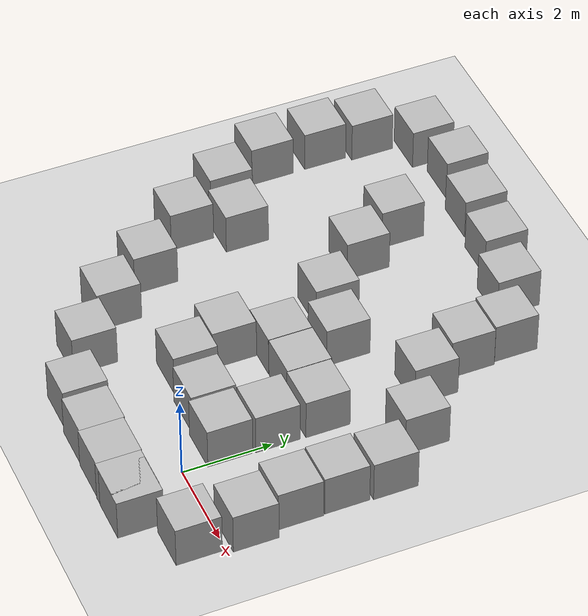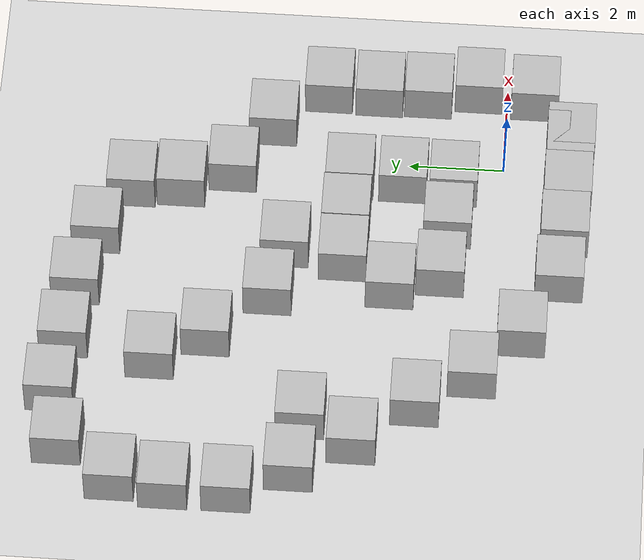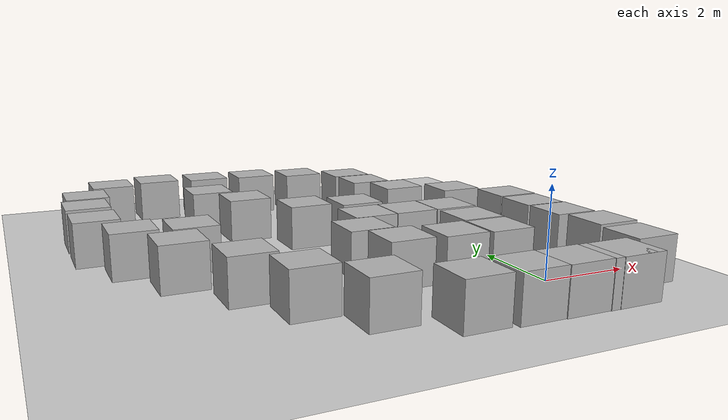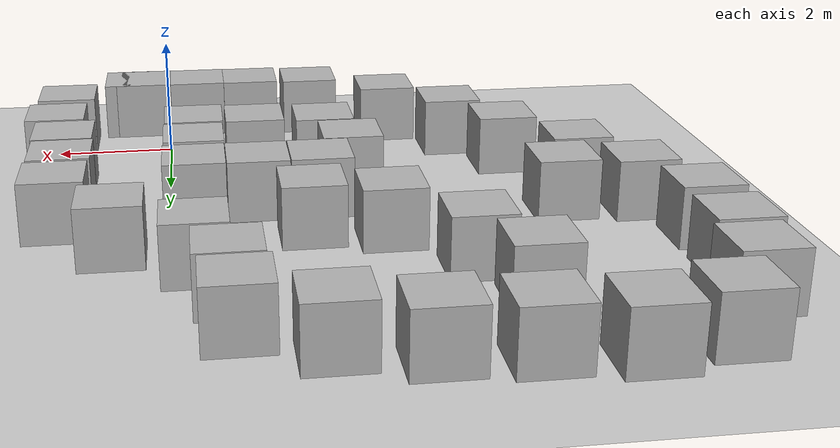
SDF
<sdf version='1.9'>
  <world name='empty'>
    <physics name='1ms' type='ignored'>
      <max_step_size>0.001</max_step_size>
      <real_time_factor>1</real_time_factor>
      <real_time_update_rate>1000</real_time_update_rate>
    </physics>
    <plugin name='ignition::gazebo::systems::Physics' filename='ignition-gazebo-physics-system'/>
    <plugin name='ignition::gazebo::systems::UserCommands' filename='ignition-gazebo-user-commands-system'/>
    <plugin name='ignition::gazebo::systems::SceneBroadcaster' filename='ignition-gazebo-scene-broadcaster-system'/>
    <plugin name='ignition::gazebo::systems::Contact' filename='ignition-gazebo-contact-system'/>
    <gravity>0 0 -9.8</gravity>
    <magnetic_field>6e-06 2.3e-05 -4.2e-05</magnetic_field>
    <atmosphere type='adiabatic'/>
    <scene>
      <ambient>0.4 0.4 0.4 1</ambient>
      <background>0.7 0.7 0.7 1</background>
      <shadows>true</shadows>
    </scene>
    <model name='ground_plane'>
      <static>true</static>
      <link name='link'>
        <collision name='collision'>
          <geometry>
            <plane>
              <normal>0 0 1</normal>
              <size>100 100</size>
            </plane>
          </geometry>
          <surface>
            <friction>
              <ode/>
            </friction>
            <bounce/>
            <contact/>
          </surface>
        </collision>
        <visual name='visual'>
          <geometry>
            <plane>
              <normal>0 0 1</normal>
              <size>100 100</size>
            </plane>
          </geometry>
          <material>
            <ambient>0.8 0.8 0.8 1</ambient>
            <diffuse>0.8 0.8 0.8 1</diffuse>
            <specular>0.8 0.8 0.8 1</specular>
          </material>
        </visual>
        <pose>0 0 0 0 -0 0</pose>
        <inertial>
          <pose>0 0 0 0 -0 0</pose>
          <mass>1</mass>
          <inertia>
            <ixx>1</ixx>
            <ixy>0</ixy>
            <ixz>0</ixz>
            <iyy>1</iyy>
            <iyz>0</iyz>
            <izz>1</izz>
          </inertia>
        </inertial>
        <enable_wind>false</enable_wind>
      </link>
      <pose>0 0 0 0 -0 0</pose>
      <self_collide>false</self_collide>
    </model>
    <model name='box'>
      <pose>-0.52554 -1.35313 0.5 -0 -0 -1e-06</pose>
      <link name='box_link'>
        <inertial>
          <inertia>
            <ixx>0.16666</ixx>
            <ixy>0</ixy>
            <ixz>0</ixz>
            <iyy>0.16666</iyy>
            <iyz>0</iyz>
            <izz>0.16666</izz>
          </inertia>
          <mass>1</mass>
          <pose>0 0 0 0 -0 0</pose>
        </inertial>
        <collision name='box_collision'>
          <geometry>
            <box>
              <size>1 1 1</size>
            </box>
          </geometry>
          <surface>
            <friction>
              <ode/>
            </friction>
            <bounce/>
            <contact/>
          </surface>
        </collision>
        <visual name='box_visual'>
          <geometry>
            <box>
              <size>1 1 1</size>
            </box>
          </geometry>
          <material>
            <ambient>0.3 0.3 0.3 1</ambient>
            <diffuse>0.7 0.7 0.7 1</diffuse>
            <specular>1 1 1 1</specular>
          </material>
        </visual>
        <pose>0 0 0 0 -0 0</pose>
        <enable_wind>false</enable_wind>
      </link>
      <static>false</static>
      <self_collide>false</self_collide>
    </model>
    <model name='box_0'>
      <pose>0.683707 -1.37469 0.5 0 0 -0</pose>
      <link name='box_link'>
        <inertial>
          <inertia>
            <ixx>0.16666</ixx>
            <ixy>0</ixy>
            <ixz>0</ixz>
            <iyy>0.16666</iyy>
            <iyz>0</iyz>
            <izz>0.16666</izz>
          </inertia>
          <mass>1</mass>
          <pose>0 0 0 0 -0 0</pose>
        </inertial>
        <collision name='box_collision'>
          <geometry>
            <box>
              <size>1 1 1</size>
            </box>
          </geometry>
          <surface>
            <friction>
              <ode/>
            </friction>
            <bounce/>
            <contact/>
          </surface>
        </collision>
        <visual name='box_visual'>
          <geometry>
            <box>
              <size>1 1 1</size>
            </box>
          </geometry>
          <material>
            <ambient>0.3 0.3 0.3 1</ambient>
            <diffuse>0.7 0.7 0.7 1</diffuse>
            <specular>1 1 1 1</specular>
          </material>
        </visual>
        <pose>0 0 0 0 -0 0</pose>
        <enable_wind>false</enable_wind>
      </link>
      <static>false</static>
      <self_collide>false</self_collide>
    </model>
    <model name='box_1'>
      <pose>0.47446 -1.36736 0.5 0 0 -0</pose>
      <link name='box_link'>
        <inertial>
          <inertia>
            <ixx>0.16666</ixx>
            <ixy>0</ixy>
            <ixz>0</ixz>
            <iyy>0.16666</iyy>
            <iyz>0</iyz>
            <izz>0.16666</izz>
          </inertia>
          <mass>1</mass>
          <pose>0 0 0 0 -0 0</pose>
        </inertial>
        <collision name='box_collision'>
          <geometry>
            <box>
              <size>1 1 1</size>
            </box>
          </geometry>
          <surface>
            <friction>
              <ode/>
            </friction>
            <bounce/>
            <contact/>
          </surface>
        </collision>
        <visual name='box_visual'>
          <geometry>
            <box>
              <size>1 1 1</size>
            </box>
          </geometry>
          <material>
            <ambient>0.3 0.3 0.3 1</ambient>
            <diffuse>0.7 0.7 0.7 1</diffuse>
            <specular>1 1 1 1</specular>
          </material>
        </visual>
        <pose>0 0 0 0 -0 0</pose>
        <enable_wind>false</enable_wind>
      </link>
      <static>false</static>
      <self_collide>false</self_collide>
    </model>
    <model name='box_1_1'>
      <pose>-1.52554 -1.33054 0.5 -0 -0 -1e-06</pose>
      <link name='box_link'>
        <inertial>
          <inertia>
            <ixx>0.16666</ixx>
            <ixy>0</ixy>
            <ixz>0</ixz>
            <iyy>0.16666</iyy>
            <iyz>0</iyz>
            <izz>0.16666</izz>
          </inertia>
          <mass>1</mass>
        </inertial>
        <collision name='box_collision'>
          <geometry>
            <box>
              <size>1 1 1</size>
            </box>
          </geometry>
          <surface>
            <friction>
              <ode/>
            </friction>
            <bounce/>
            <contact/>
          </surface>
        </collision>
        <visual name='box_visual'>
          <geometry>
            <box>
              <size>1 1 1</size>
            </box>
          </geometry>
          <material>
            <ambient>0.3 0.3 0.3 1</ambient>
            <diffuse>0.7 0.7 0.7 1</diffuse>
            <specular>1 1 1 1</specular>
          </material>
        </visual>
      </link>
      <static>false</static>
      <self_collide>false</self_collide>
    </model>
    <model name='box_1_2'>
      <pose>1.83501 -0.574282 0.5 0 -0 -0</pose>
      <link name='box_link'>
        <inertial>
          <inertia>
            <ixx>0.16666</ixx>
            <ixy>0</ixy>
            <ixz>0</ixz>
            <iyy>0.16666</iyy>
            <iyz>0</iyz>
            <izz>0.16666</izz>
          </inertia>
          <mass>1</mass>
        </inertial>
        <collision name='box_collision'>
          <geometry>
            <box>
              <size>1 1 1</size>
            </box>
          </geometry>
          <surface>
            <friction>
              <ode/>
            </friction>
            <bounce/>
            <contact/>
          </surface>
        </collision>
        <visual name='box_visual'>
          <geometry>
            <box>
              <size>1 1 1</size>
            </box>
          </geometry>
          <material>
            <ambient>0.3 0.3 0.3 1</ambient>
            <diffuse>0.7 0.7 0.7 1</diffuse>
            <specular>1 1 1 1</specular>
          </material>
        </visual>
      </link>
      <static>false</static>
      <self_collide>false</self_collide>
    </model>
    <model name='box_1_3'>
      <pose>1.95257 0.613796 0.5 0 -0 -0</pose>
      <link name='box_link'>
        <inertial>
          <inertia>
            <ixx>0.16666</ixx>
            <ixy>0</ixy>
            <ixz>0</ixz>
            <iyy>0.16666</iyy>
            <iyz>0</iyz>
            <izz>0.16666</izz>
          </inertia>
          <mass>1</mass>
        </inertial>
        <collision name='box_collision'>
          <geometry>
            <box>
              <size>1 1 1</size>
            </box>
          </geometry>
          <surface>
            <friction>
              <ode/>
            </friction>
            <bounce/>
            <contact/>
          </surface>
        </collision>
        <visual name='box_visual'>
          <geometry>
            <box>
              <size>1 1 1</size>
            </box>
          </geometry>
          <material>
            <ambient>0.3 0.3 0.3 1</ambient>
            <diffuse>0.7 0.7 0.7 1</diffuse>
            <specular>1 1 1 1</specular>
          </material>
        </visual>
      </link>
      <static>false</static>
      <self_collide>false</self_collide>
    </model>
    <model name='box_1_4'>
      <pose>-1.47774 1.10873 0.5 0 -0 -0</pose>
      <link name='box_link'>
        <inertial>
          <inertia>
            <ixx>0.16666</ixx>
            <ixy>0</ixy>
            <ixz>0</ixz>
            <iyy>0.16666</iyy>
            <iyz>0</iyz>
            <izz>0.16666</izz>
          </inertia>
          <mass>1</mass>
        </inertial>
        <collision name='box_collision'>
          <geometry>
            <box>
              <size>1 1 1</size>
            </box>
          </geometry>
          <surface>
            <friction>
              <ode/>
            </friction>
            <bounce/>
            <contact/>
          </surface>
        </collision>
        <visual name='box_visual'>
          <geometry>
            <box>
              <size>1 1 1</size>
            </box>
          </geometry>
          <material>
            <ambient>0.3 0.3 0.3 1</ambient>
            <diffuse>0.7 0.7 0.7 1</diffuse>
            <specular>1 1 1 1</specular>
          </material>
        </visual>
      </link>
      <static>false</static>
      <self_collide>false</self_collide>
    </model>
    <model name='box_1_5'>
      <pose>-0.428855 1.03773 0.5 0 -0 -0</pose>
      <link name='box_link'>
        <inertial>
          <inertia>
            <ixx>0.16666</ixx>
            <ixy>0</ixy>
            <ixz>0</ixz>
            <iyy>0.16666</iyy>
            <iyz>0</iyz>
            <izz>0.16666</izz>
          </inertia>
          <mass>1</mass>
        </inertial>
        <collision name='box_collision'>
          <geometry>
            <box>
              <size>1 1 1</size>
            </box>
          </geometry>
          <surface>
            <friction>
              <ode/>
            </friction>
            <bounce/>
            <contact/>
          </surface>
        </collision>
        <visual name='box_visual'>
          <geometry>
            <box>
              <size>1 1 1</size>
            </box>
          </geometry>
          <material>
            <ambient>0.3 0.3 0.3 1</ambient>
            <diffuse>0.7 0.7 0.7 1</diffuse>
            <specular>1 1 1 1</specular>
          </material>
        </visual>
      </link>
      <static>false</static>
      <self_collide>false</self_collide>
    </model>
    <model name='box_1_6'>
      <pose>-0.412319 2.09972 0.5 0 -0 -0</pose>
      <link name='box_link'>
        <inertial>
          <inertia>
            <ixx>0.16666</ixx>
            <ixy>0</ixy>
            <ixz>0</ixz>
            <iyy>0.16666</iyy>
            <iyz>0</iyz>
            <izz>0.16666</izz>
          </inertia>
          <mass>1</mass>
        </inertial>
        <collision name='box_collision'>
          <geometry>
            <box>
              <size>1 1 1</size>
            </box>
          </geometry>
          <surface>
            <friction>
              <ode/>
            </friction>
            <bounce/>
            <contact/>
          </surface>
        </collision>
        <visual name='box_visual'>
          <geometry>
            <box>
              <size>1 1 1</size>
            </box>
          </geometry>
          <material>
            <ambient>0.3 0.3 0.3 1</ambient>
            <diffuse>0.7 0.7 0.7 1</diffuse>
            <specular>1 1 1 1</specular>
          </material>
        </visual>
      </link>
      <static>false</static>
      <self_collide>false</self_collide>
    </model>
    <model name='box_1_7'>
      <pose>1.75478 1.67727 0.5 0 -0 -0</pose>
      <link name='box_link'>
        <inertial>
          <inertia>
            <ixx>0.16666</ixx>
            <ixy>0</ixy>
            <ixz>0</ixz>
            <iyy>0.16666</iyy>
            <iyz>0</iyz>
            <izz>0.16666</izz>
          </inertia>
          <mass>1</mass>
        </inertial>
        <collision name='box_collision'>
          <geometry>
            <box>
              <size>1 1 1</size>
            </box>
          </geometry>
          <surface>
            <friction>
              <ode/>
            </friction>
            <bounce/>
            <contact/>
          </surface>
        </collision>
        <visual name='box_visual'>
          <geometry>
            <box>
              <size>1 1 1</size>
            </box>
          </geometry>
          <material>
            <ambient>0.3 0.3 0.3 1</ambient>
            <diffuse>0.7 0.7 0.7 1</diffuse>
            <specular>1 1 1 1</specular>
          </material>
        </visual>
      </link>
      <static>false</static>
      <self_collide>false</self_collide>
    </model>
    <model name='box_1_8'>
      <pose>1.72751 2.71147 0.5 0 -0 -0</pose>
      <link name='box_link'>
        <inertial>
          <inertia>
            <ixx>0.16666</ixx>
            <ixy>0</ixy>
            <ixz>0</ixz>
            <iyy>0.16666</iyy>
            <iyz>0</iyz>
            <izz>0.16666</izz>
          </inertia>
          <mass>1</mass>
        </inertial>
        <collision name='box_collision'>
          <geometry>
            <box>
              <size>1 1 1</size>
            </box>
          </geometry>
          <surface>
            <friction>
              <ode/>
            </friction>
            <bounce/>
            <contact/>
          </surface>
        </collision>
        <visual name='box_visual'>
          <geometry>
            <box>
              <size>1 1 1</size>
            </box>
          </geometry>
          <material>
            <ambient>0.3 0.3 0.3 1</ambient>
            <diffuse>0.7 0.7 0.7 1</diffuse>
            <specular>1 1 1 1</specular>
          </material>
        </visual>
      </link>
      <static>false</static>
      <self_collide>false</self_collide>
    </model>
    <model name='box_1_9'>
      <pose>1.75526 3.78392 0.5 0 -0 -0</pose>
      <link name='box_link'>
        <inertial>
          <inertia>
            <ixx>0.16666</ixx>
            <ixy>0</ixy>
            <ixz>0</ixz>
            <iyy>0.16666</iyy>
            <iyz>0</iyz>
            <izz>0.16666</izz>
          </inertia>
          <mass>1</mass>
        </inertial>
        <collision name='box_collision'>
          <geometry>
            <box>
              <size>1 1 1</size>
            </box>
          </geometry>
          <surface>
            <friction>
              <ode/>
            </friction>
            <bounce/>
            <contact/>
          </surface>
        </collision>
        <visual name='box_visual'>
          <geometry>
            <box>
              <size>1 1 1</size>
            </box>
          </geometry>
          <material>
            <ambient>0.3 0.3 0.3 1</ambient>
            <diffuse>0.7 0.7 0.7 1</diffuse>
            <specular>1 1 1 1</specular>
          </material>
        </visual>
      </link>
      <static>false</static>
      <self_collide>false</self_collide>
    </model>
    <model name='box_1_10'>
      <pose>-2.64793 -1.26761 0.5 0 -0 -0</pose>
      <link name='box_link'>
        <inertial>
          <inertia>
            <ixx>0.16666</ixx>
            <ixy>0</ixy>
            <ixz>0</ixz>
            <iyy>0.16666</iyy>
            <iyz>0</iyz>
            <izz>0.16666</izz>
          </inertia>
          <mass>1</mass>
        </inertial>
        <collision name='box_collision'>
          <geometry>
            <box>
              <size>1 1 1</size>
            </box>
          </geometry>
          <surface>
            <friction>
              <ode/>
            </friction>
            <bounce/>
            <contact/>
          </surface>
        </collision>
        <visual name='box_visual'>
          <geometry>
            <box>
              <size>1 1 1</size>
            </box>
          </geometry>
          <material>
            <ambient>0.3 0.3 0.3 1</ambient>
            <diffuse>0.7 0.7 0.7 1</diffuse>
            <specular>1 1 1 1</specular>
          </material>
        </visual>
      </link>
      <static>false</static>
      <self_collide>false</self_collide>
    </model>
    <model name='box_1_11'>
      <pose>-2.6795 1.1977 0.5 0 -0 -0</pose>
      <link name='box_link'>
        <inertial>
          <inertia>
            <ixx>0.16666</ixx>
            <ixy>0</ixy>
            <ixz>0</ixz>
            <iyy>0.16666</iyy>
            <iyz>0</iyz>
            <izz>0.16666</izz>
          </inertia>
          <mass>1</mass>
        </inertial>
        <collision name='box_collision'>
          <geometry>
            <box>
              <size>1 1 1</size>
            </box>
          </geometry>
          <surface>
            <friction>
              <ode/>
            </friction>
            <bounce/>
            <contact/>
          </surface>
        </collision>
        <visual name='box_visual'>
          <geometry>
            <box>
              <size>1 1 1</size>
            </box>
          </geometry>
          <material>
            <ambient>0.3 0.3 0.3 1</ambient>
            <diffuse>0.7 0.7 0.7 1</diffuse>
            <specular>1 1 1 1</specular>
          </material>
        </visual>
      </link>
      <static>false</static>
      <self_collide>false</self_collide>
    </model>
    <model name='box_2'>
      <pose>-0.401001 3.21963 0.5 0 -0 -0</pose>
      <link name='box_link'>
        <inertial>
          <inertia>
            <ixx>0.16666</ixx>
            <ixy>0</ixy>
            <ixz>0</ixz>
            <iyy>0.16666</iyy>
            <iyz>0</iyz>
            <izz>0.16666</izz>
          </inertia>
          <mass>1</mass>
          <pose>0 0 0 0 -0 0</pose>
        </inertial>
        <collision name='box_collision'>
          <geometry>
            <box>
              <size>1 1 1</size>
            </box>
          </geometry>
          <surface>
            <friction>
              <ode/>
            </friction>
            <bounce/>
            <contact/>
          </surface>
        </collision>
        <visual name='box_visual'>
          <geometry>
            <box>
              <size>1 1 1</size>
            </box>
          </geometry>
          <material>
            <ambient>0.3 0.3 0.3 1</ambient>
            <diffuse>0.7 0.7 0.7 1</diffuse>
            <specular>1 1 1 1</specular>
          </material>
        </visual>
        <pose>0 0 0 0 -0 0</pose>
        <enable_wind>false</enable_wind>
      </link>
      <static>false</static>
      <self_collide>false</self_collide>
    </model>
    <model name='box_1_12'>
      <pose>-1.41265 3.24077 0.5 0 -0 -0</pose>
      <link name='box_link'>
        <inertial>
          <inertia>
            <ixx>0.16666</ixx>
            <ixy>0</ixy>
            <ixz>0</ixz>
            <iyy>0.16666</iyy>
            <iyz>0</iyz>
            <izz>0.16666</izz>
          </inertia>
          <mass>1</mass>
        </inertial>
        <collision name='box_collision'>
          <geometry>
            <box>
              <size>1 1 1</size>
            </box>
          </geometry>
          <surface>
            <friction>
              <ode/>
            </friction>
            <bounce/>
            <contact/>
          </surface>
        </collision>
        <visual name='box_visual'>
          <geometry>
            <box>
              <size>1 1 1</size>
            </box>
          </geometry>
          <material>
            <ambient>0.3 0.3 0.3 1</ambient>
            <diffuse>0.7 0.7 0.7 1</diffuse>
            <specular>1 1 1 1</specular>
          </material>
        </visual>
      </link>
      <static>false</static>
      <self_collide>false</self_collide>
    </model>
    <model name='box_1_13'>
      <pose>-2.42609 3.23956 0.5 0 -0 -0</pose>
      <link name='box_link'>
        <inertial>
          <inertia>
            <ixx>0.16666</ixx>
            <ixy>0</ixy>
            <ixz>0</ixz>
            <iyy>0.16666</iyy>
            <iyz>0</iyz>
            <izz>0.16666</izz>
          </inertia>
          <mass>1</mass>
        </inertial>
        <collision name='box_collision'>
          <geometry>
            <box>
              <size>1 1 1</size>
            </box>
          </geometry>
          <surface>
            <friction>
              <ode/>
            </friction>
            <bounce/>
            <contact/>
          </surface>
        </collision>
        <visual name='box_visual'>
          <geometry>
            <box>
              <size>1 1 1</size>
            </box>
          </geometry>
          <material>
            <ambient>0.3 0.3 0.3 1</ambient>
            <diffuse>0.7 0.7 0.7 1</diffuse>
            <specular>1 1 1 1</specular>
          </material>
        </visual>
      </link>
      <static>false</static>
      <self_collide>false</self_collide>
    </model>
    <model name='box_1_14'>
      <pose>-3.0428 2.22465 0.5 0 -0 -0</pose>
      <link name='box_link'>
        <inertial>
          <inertia>
            <ixx>0.16666</ixx>
            <ixy>0</ixy>
            <ixz>0</ixz>
            <iyy>0.16666</iyy>
            <iyz>0</iyz>
            <izz>0.16666</izz>
          </inertia>
          <mass>1</mass>
        </inertial>
        <collision name='box_collision'>
          <geometry>
            <box>
              <size>1 1 1</size>
            </box>
          </geometry>
          <surface>
            <friction>
              <ode/>
            </friction>
            <bounce/>
            <contact/>
          </surface>
        </collision>
        <visual name='box_visual'>
          <geometry>
            <box>
              <size>1 1 1</size>
            </box>
          </geometry>
          <material>
            <ambient>0.3 0.3 0.3 1</ambient>
            <diffuse>0.7 0.7 0.7 1</diffuse>
            <specular>1 1 1 1</specular>
          </material>
        </visual>
      </link>
      <static>false</static>
      <self_collide>false</self_collide>
    </model>
    <model name='box_1_15'>
      <pose>0.8495 4.90903 0.5 0 -0 -0</pose>
      <link name='box_link'>
        <inertial>
          <inertia>
            <ixx>0.16666</ixx>
            <ixy>0</ixy>
            <ixz>0</ixz>
            <iyy>0.16666</iyy>
            <iyz>0</iyz>
            <izz>0.16666</izz>
          </inertia>
          <mass>1</mass>
        </inertial>
        <collision name='box_collision'>
          <geometry>
            <box>
              <size>1 1 1</size>
            </box>
          </geometry>
          <surface>
            <friction>
              <ode/>
            </friction>
            <bounce/>
            <contact/>
          </surface>
        </collision>
        <visual name='box_visual'>
          <geometry>
            <box>
              <size>1 1 1</size>
            </box>
          </geometry>
          <material>
            <ambient>0.3 0.3 0.3 1</ambient>
            <diffuse>0.7 0.7 0.7 1</diffuse>
            <specular>1 1 1 1</specular>
          </material>
        </visual>
      </link>
      <static>false</static>
      <self_collide>false</self_collide>
    </model>
    <model name='box_1_16'>
      <pose>-0.366812 5.67669 0.5 0 -0 -0</pose>
      <link name='box_link'>
        <inertial>
          <inertia>
            <ixx>0.16666</ixx>
            <ixy>0</ixy>
            <ixz>0</ixz>
            <iyy>0.16666</iyy>
            <iyz>0</iyz>
            <izz>0.16666</izz>
          </inertia>
          <mass>1</mass>
        </inertial>
        <collision name='box_collision'>
          <geometry>
            <box>
              <size>1 1 1</size>
            </box>
          </geometry>
          <surface>
            <friction>
              <ode/>
            </friction>
            <bounce/>
            <contact/>
          </surface>
        </collision>
        <visual name='box_visual'>
          <geometry>
            <box>
              <size>1 1 1</size>
            </box>
          </geometry>
          <material>
            <ambient>0.3 0.3 0.3 1</ambient>
            <diffuse>0.7 0.7 0.7 1</diffuse>
            <specular>1 1 1 1</specular>
          </material>
        </visual>
      </link>
      <static>false</static>
      <self_collide>false</self_collide>
    </model>
    <model name='box_1_17'>
      <pose>-0.805489 6.73086 0.5 0 -0 -0</pose>
      <link name='box_link'>
        <inertial>
          <inertia>
            <ixx>0.16666</ixx>
            <ixy>0</ixy>
            <ixz>0</ixz>
            <iyy>0.16666</iyy>
            <iyz>0</iyz>
            <izz>0.16666</izz>
          </inertia>
          <mass>1</mass>
        </inertial>
        <collision name='box_collision'>
          <geometry>
            <box>
              <size>1 1 1</size>
            </box>
          </geometry>
          <surface>
            <friction>
              <ode/>
            </friction>
            <bounce/>
            <contact/>
          </surface>
        </collision>
        <visual name='box_visual'>
          <geometry>
            <box>
              <size>1 1 1</size>
            </box>
          </geometry>
          <material>
            <ambient>0.3 0.3 0.3 1</ambient>
            <diffuse>0.7 0.7 0.7 1</diffuse>
            <specular>1 1 1 1</specular>
          </material>
        </visual>
      </link>
      <static>false</static>
      <self_collide>false</self_collide>
    </model>
    <model name='box_1_18'>
      <pose>-3.35503 4.73861 0.5 0 -0 -0</pose>
      <link name='box_link'>
        <inertial>
          <inertia>
            <ixx>0.16666</ixx>
            <ixy>0</ixy>
            <ixz>0</ixz>
            <iyy>0.16666</iyy>
            <iyz>0</iyz>
            <izz>0.16666</izz>
          </inertia>
          <mass>1</mass>
        </inertial>
        <collision name='box_collision'>
          <geometry>
            <box>
              <size>1 1 1</size>
            </box>
          </geometry>
          <surface>
            <friction>
              <ode/>
            </friction>
            <bounce/>
            <contact/>
          </surface>
        </collision>
        <visual name='box_visual'>
          <geometry>
            <box>
              <size>1 1 1</size>
            </box>
          </geometry>
          <material>
            <ambient>0.3 0.3 0.3 1</ambient>
            <diffuse>0.7 0.7 0.7 1</diffuse>
            <specular>1 1 1 1</specular>
          </material>
        </visual>
      </link>
      <static>false</static>
      <self_collide>false</self_collide>
    </model>
    <model name='box_1_19'>
      <pose>-4.43475 5.94034 0.5 0 -0 -0</pose>
      <link name='box_link'>
        <inertial>
          <inertia>
            <ixx>0.16666</ixx>
            <ixy>0</ixy>
            <ixz>0</ixz>
            <iyy>0.16666</iyy>
            <iyz>0</iyz>
            <izz>0.16666</izz>
          </inertia>
          <mass>1</mass>
        </inertial>
        <collision name='box_collision'>
          <geometry>
            <box>
              <size>1 1 1</size>
            </box>
          </geometry>
          <surface>
            <friction>
              <ode/>
            </friction>
            <bounce/>
            <contact/>
          </surface>
        </collision>
        <visual name='box_visual'>
          <geometry>
            <box>
              <size>1 1 1</size>
            </box>
          </geometry>
          <material>
            <ambient>0.3 0.3 0.3 1</ambient>
            <diffuse>0.7 0.7 0.7 1</diffuse>
            <specular>1 1 1 1</specular>
          </material>
        </visual>
      </link>
      <static>false</static>
      <self_collide>false</self_collide>
    </model>
    <model name='box_1_20'>
      <pose>-0.877019 7.77022 0.5 0 -0 -0</pose>
      <link name='box_link'>
        <inertial>
          <inertia>
            <ixx>0.16666</ixx>
            <ixy>0</ixy>
            <ixz>0</ixz>
            <iyy>0.16666</iyy>
            <iyz>0</iyz>
            <izz>0.16666</izz>
          </inertia>
          <mass>1</mass>
        </inertial>
        <collision name='box_collision'>
          <geometry>
            <box>
              <size>1 1 1</size>
            </box>
          </geometry>
          <surface>
            <friction>
              <ode/>
            </friction>
            <bounce/>
            <contact/>
          </surface>
        </collision>
        <visual name='box_visual'>
          <geometry>
            <box>
              <size>1 1 1</size>
            </box>
          </geometry>
          <material>
            <ambient>0.3 0.3 0.3 1</ambient>
            <diffuse>0.7 0.7 0.7 1</diffuse>
            <specular>1 1 1 1</specular>
          </material>
        </visual>
      </link>
      <static>false</static>
      <self_collide>false</self_collide>
    </model>
    <model name='box_1_21'>
      <pose>-3.362 8.72601 0.5 0 -0 -0</pose>
      <link name='box_link'>
        <inertial>
          <inertia>
            <ixx>0.16666</ixx>
            <ixy>0</ixy>
            <ixz>0</ixz>
            <iyy>0.16666</iyy>
            <iyz>0</iyz>
            <izz>0.16666</izz>
          </inertia>
          <mass>1</mass>
        </inertial>
        <collision name='box_collision'>
          <geometry>
            <box>
              <size>1 1 1</size>
            </box>
          </geometry>
          <surface>
            <friction>
              <ode/>
            </friction>
            <bounce/>
            <contact/>
          </surface>
        </collision>
        <visual name='box_visual'>
          <geometry>
            <box>
              <size>1 1 1</size>
            </box>
          </geometry>
          <material>
            <ambient>0.3 0.3 0.3 1</ambient>
            <diffuse>0.7 0.7 0.7 1</diffuse>
            <specular>1 1 1 1</specular>
          </material>
        </visual>
      </link>
      <static>false</static>
      <self_collide>false</self_collide>
    </model>
    <model name='box_1_22'>
      <pose>-4.65626 8.85518 0.5 0 -0 -0</pose>
      <link name='box_link'>
        <inertial>
          <inertia>
            <ixx>0.16666</ixx>
            <ixy>0</ixy>
            <ixz>0</ixz>
            <iyy>0.16666</iyy>
            <iyz>0</iyz>
            <izz>0.16666</izz>
          </inertia>
          <mass>1</mass>
        </inertial>
        <collision name='box_collision'>
          <geometry>
            <box>
              <size>1 1 1</size>
            </box>
          </geometry>
          <surface>
            <friction>
              <ode/>
            </friction>
            <bounce/>
            <contact/>
          </surface>
        </collision>
        <visual name='box_visual'>
          <geometry>
            <box>
              <size>1 1 1</size>
            </box>
          </geometry>
          <material>
            <ambient>0.3 0.3 0.3 1</ambient>
            <diffuse>0.7 0.7 0.7 1</diffuse>
            <specular>1 1 1 1</specular>
          </material>
        </visual>
      </link>
      <static>false</static>
      <self_collide>false</self_collide>
    </model>
    <model name='box_1_23'>
      <pose>-5.05286 7.04676 0.5 0 -0 -0</pose>
      <link name='box_link'>
        <inertial>
          <inertia>
            <ixx>0.16666</ixx>
            <ixy>0</ixy>
            <ixz>0</ixz>
            <iyy>0.16666</iyy>
            <iyz>0</iyz>
            <izz>0.16666</izz>
          </inertia>
          <mass>1</mass>
        </inertial>
        <collision name='box_collision'>
          <geometry>
            <box>
              <size>1 1 1</size>
            </box>
          </geometry>
          <surface>
            <friction>
              <ode/>
            </friction>
            <bounce/>
            <contact/>
          </surface>
        </collision>
        <visual name='box_visual'>
          <geometry>
            <box>
              <size>1 1 1</size>
            </box>
          </geometry>
          <material>
            <ambient>0.3 0.3 0.3 1</ambient>
            <diffuse>0.7 0.7 0.7 1</diffuse>
            <specular>1 1 1 1</specular>
          </material>
        </visual>
      </link>
      <static>false</static>
      <self_collide>false</self_collide>
    </model>
    <model name='box_1_24'>
      <pose>-5.96598 9.0242 0.5 0 -0 -0</pose>
      <link name='box_link'>
        <inertial>
          <inertia>
            <ixx>0.16666</ixx>
            <ixy>0</ixy>
            <ixz>0</ixz>
            <iyy>0.16666</iyy>
            <iyz>0</iyz>
            <izz>0.16666</izz>
          </inertia>
          <mass>1</mass>
        </inertial>
        <collision name='box_collision'>
          <geometry>
            <box>
              <size>1 1 1</size>
            </box>
          </geometry>
          <surface>
            <friction>
              <ode/>
            </friction>
            <bounce/>
            <contact/>
          </surface>
        </collision>
        <visual name='box_visual'>
          <geometry>
            <box>
              <size>1 1 1</size>
            </box>
          </geometry>
          <material>
            <ambient>0.3 0.3 0.3 1</ambient>
            <diffuse>0.7 0.7 0.7 1</diffuse>
            <specular>1 1 1 1</specular>
          </material>
        </visual>
      </link>
      <static>false</static>
      <self_collide>false</self_collide>
    </model>
    <model name='box_1_25'>
      <pose>-7.20051 8.76917 0.5 0 -0 -0</pose>
      <link name='box_link'>
        <inertial>
          <inertia>
            <ixx>0.16666</ixx>
            <ixy>0</ixy>
            <ixz>0</ixz>
            <iyy>0.16666</iyy>
            <iyz>0</iyz>
            <izz>0.16666</izz>
          </inertia>
          <mass>1</mass>
        </inertial>
        <collision name='box_collision'>
          <geometry>
            <box>
              <size>1 1 1</size>
            </box>
          </geometry>
          <surface>
            <friction>
              <ode/>
            </friction>
            <bounce/>
            <contact/>
          </surface>
        </collision>
        <visual name='box_visual'>
          <geometry>
            <box>
              <size>1 1 1</size>
            </box>
          </geometry>
          <material>
            <ambient>0.3 0.3 0.3 1</ambient>
            <diffuse>0.7 0.7 0.7 1</diffuse>
            <specular>1 1 1 1</specular>
          </material>
        </visual>
      </link>
      <static>false</static>
      <self_collide>false</self_collide>
    </model>
    <model name='box_1_26'>
      <pose>-7.96955 7.62229 0.5 -0 0 -0</pose>
      <link name='box_link'>
        <inertial>
          <inertia>
            <ixx>0.16666</ixx>
            <ixy>0</ixy>
            <ixz>0</ixz>
            <iyy>0.16666</iyy>
            <iyz>0</iyz>
            <izz>0.16666</izz>
          </inertia>
          <mass>1</mass>
        </inertial>
        <collision name='box_collision'>
          <geometry>
            <box>
              <size>1 1 1</size>
            </box>
          </geometry>
          <surface>
            <friction>
              <ode/>
            </friction>
            <bounce/>
            <contact/>
          </surface>
        </collision>
        <visual name='box_visual'>
          <geometry>
            <box>
              <size>1 1 1</size>
            </box>
          </geometry>
          <material>
            <ambient>0.3 0.3 0.3 1</ambient>
            <diffuse>0.7 0.7 0.7 1</diffuse>
            <specular>1 1 1 1</specular>
          </material>
        </visual>
      </link>
      <static>false</static>
      <self_collide>false</self_collide>
    </model>
    <model name='box_1_27'>
      <pose>-8.09582 6.52536 0.5 0 -0 -0</pose>
      <link name='box_link'>
        <inertial>
          <inertia>
            <ixx>0.16666</ixx>
            <ixy>0</ixy>
            <ixz>0</ixz>
            <iyy>0.16666</iyy>
            <iyz>0</iyz>
            <izz>0.16666</izz>
          </inertia>
          <mass>1</mass>
        </inertial>
        <collision name='box_collision'>
          <geometry>
            <box>
              <size>1 1 1</size>
            </box>
          </geometry>
          <surface>
            <friction>
              <ode/>
            </friction>
            <bounce/>
            <contact/>
          </surface>
        </collision>
        <visual name='box_visual'>
          <geometry>
            <box>
              <size>1 1 1</size>
            </box>
          </geometry>
          <material>
            <ambient>0.3 0.3 0.3 1</ambient>
            <diffuse>0.7 0.7 0.7 1</diffuse>
            <specular>1 1 1 1</specular>
          </material>
        </visual>
      </link>
      <static>false</static>
      <self_collide>false</self_collide>
    </model>
    <model name='box_1_28'>
      <pose>-8.08648 5.24145 0.5 0 -0 -0</pose>
      <link name='box_link'>
        <inertial>
          <inertia>
            <ixx>0.16666</ixx>
            <ixy>0</ixy>
            <ixz>0</ixz>
            <iyy>0.16666</iyy>
            <iyz>0</iyz>
            <izz>0.16666</izz>
          </inertia>
          <mass>1</mass>
        </inertial>
        <collision name='box_collision'>
          <geometry>
            <box>
              <size>1 1 1</size>
            </box>
          </geometry>
          <surface>
            <friction>
              <ode/>
            </friction>
            <bounce/>
            <contact/>
          </surface>
        </collision>
        <visual name='box_visual'>
          <geometry>
            <box>
              <size>1 1 1</size>
            </box>
          </geometry>
          <material>
            <ambient>0.3 0.3 0.3 1</ambient>
            <diffuse>0.7 0.7 0.7 1</diffuse>
            <specular>1 1 1 1</specular>
          </material>
        </visual>
      </link>
      <static>false</static>
      <self_collide>false</self_collide>
    </model>
    <model name='box_1_29'>
      <pose>-7.51817 4.01613 0.5 -0 0 -0</pose>
      <link name='box_link'>
        <inertial>
          <inertia>
            <ixx>0.16666</ixx>
            <ixy>0</ixy>
            <ixz>0</ixz>
            <iyy>0.16666</iyy>
            <iyz>0</iyz>
            <izz>0.16666</izz>
          </inertia>
          <mass>1</mass>
        </inertial>
        <collision name='box_collision'>
          <geometry>
            <box>
              <size>1 1 1</size>
            </box>
          </geometry>
          <surface>
            <friction>
              <ode/>
            </friction>
            <bounce/>
            <contact/>
          </surface>
        </collision>
        <visual name='box_visual'>
          <geometry>
            <box>
              <size>1 1 1</size>
            </box>
          </geometry>
          <material>
            <ambient>0.3 0.3 0.3 1</ambient>
            <diffuse>0.7 0.7 0.7 1</diffuse>
            <specular>1 1 1 1</specular>
          </material>
        </visual>
      </link>
      <static>false</static>
      <self_collide>false</self_collide>
    </model>
    <model name='box_1_30'>
      <pose>-6.80536 2.7896 0.5 0 -0 -0</pose>
      <link name='box_link'>
        <inertial>
          <inertia>
            <ixx>0.16666</ixx>
            <ixy>0</ixy>
            <ixz>0</ixz>
            <iyy>0.16666</iyy>
            <iyz>0</iyz>
            <izz>0.16666</izz>
          </inertia>
          <mass>1</mass>
        </inertial>
        <collision name='box_collision'>
          <geometry>
            <box>
              <size>1 1 1</size>
            </box>
          </geometry>
          <surface>
            <friction>
              <ode/>
            </friction>
            <bounce/>
            <contact/>
          </surface>
        </collision>
        <visual name='box_visual'>
          <geometry>
            <box>
              <size>1 1 1</size>
            </box>
          </geometry>
          <material>
            <ambient>0.3 0.3 0.3 1</ambient>
            <diffuse>0.7 0.7 0.7 1</diffuse>
            <specular>1 1 1 1</specular>
          </material>
        </visual>
      </link>
      <static>false</static>
      <self_collide>false</self_collide>
    </model>
    <model name='box_1_31'>
      <pose>-5.83028 1.55223 0.5 0 -0 -0</pose>
      <link name='box_link'>
        <inertial>
          <inertia>
            <ixx>0.16666</ixx>
            <ixy>0</ixy>
            <ixz>0</ixz>
            <iyy>0.16666</iyy>
            <iyz>0</iyz>
            <izz>0.16666</izz>
          </inertia>
          <mass>1</mass>
        </inertial>
        <collision name='box_collision'>
          <geometry>
            <box>
              <size>1 1 1</size>
            </box>
          </geometry>
          <surface>
            <friction>
              <ode/>
            </friction>
            <bounce/>
            <contact/>
          </surface>
        </collision>
        <visual name='box_visual'>
          <geometry>
            <box>
              <size>1 1 1</size>
            </box>
          </geometry>
          <material>
            <ambient>0.3 0.3 0.3 1</ambient>
            <diffuse>0.7 0.7 0.7 1</diffuse>
            <specular>1 1 1 1</specular>
          </material>
        </visual>
      </link>
      <static>false</static>
      <self_collide>false</self_collide>
    </model>
    <model name='box_1_32'>
      <pose>-5.08066 0.417867 0.5 0 -0 -0</pose>
      <link name='box_link'>
        <inertial>
          <inertia>
            <ixx>0.16666</ixx>
            <ixy>0</ixy>
            <ixz>0</ixz>
            <iyy>0.16666</iyy>
            <iyz>0</iyz>
            <izz>0.16666</izz>
          </inertia>
          <mass>1</mass>
        </inertial>
        <collision name='box_collision'>
          <geometry>
            <box>
              <size>1 1 1</size>
            </box>
          </geometry>
          <surface>
            <friction>
              <ode/>
            </friction>
            <bounce/>
            <contact/>
          </surface>
        </collision>
        <visual name='box_visual'>
          <geometry>
            <box>
              <size>1 1 1</size>
            </box>
          </geometry>
          <material>
            <ambient>0.3 0.3 0.3 1</ambient>
            <diffuse>0.7 0.7 0.7 1</diffuse>
            <specular>1 1 1 1</specular>
          </material>
        </visual>
      </link>
      <static>false</static>
      <self_collide>false</self_collide>
    </model>
    <model name='box_1_33'>
      <pose>-4.03177 -0.544681 0.5 0 -0 -0</pose>
      <link name='box_link'>
        <inertial>
          <inertia>
            <ixx>0.16666</ixx>
            <ixy>0</ixy>
            <ixz>0</ixz>
            <iyy>0.16666</iyy>
            <iyz>0</iyz>
            <izz>0.16666</izz>
          </inertia>
          <mass>1</mass>
        </inertial>
        <collision name='box_collision'>
          <geometry>
            <box>
              <size>1 1 1</size>
            </box>
          </geometry>
          <surface>
            <friction>
              <ode/>
            </friction>
            <bounce/>
            <contact/>
          </surface>
        </collision>
        <visual name='box_visual'>
          <geometry>
            <box>
              <size>1 1 1</size>
            </box>
          </geometry>
          <material>
            <ambient>0.3 0.3 0.3 1</ambient>
            <diffuse>0.7 0.7 0.7 1</diffuse>
            <specular>1 1 1 1</specular>
          </material>
        </visual>
      </link>
      <static>false</static>
      <self_collide>false</self_collide>
    </model>
    <model name='box_1_34'>
      <pose>-6.27441 3.87007 0.5 0 -0 -0</pose>
      <link name='box_link'>
        <inertial>
          <inertia>
            <ixx>0.16666</ixx>
            <ixy>0</ixy>
            <ixz>0</ixz>
            <iyy>0.16666</iyy>
            <iyz>0</iyz>
            <izz>0.16666</izz>
          </inertia>
          <mass>1</mass>
        </inertial>
        <collision name='box_collision'>
          <geometry>
            <box>
              <size>1 1 1</size>
            </box>
          </geometry>
          <surface>
            <friction>
              <ode/>
            </friction>
            <bounce/>
            <contact/>
          </surface>
        </collision>
        <visual name='box_visual'>
          <geometry>
            <box>
              <size>1 1 1</size>
            </box>
          </geometry>
          <material>
            <ambient>0.3 0.3 0.3 1</ambient>
            <diffuse>0.7 0.7 0.7 1</diffuse>
            <specular>1 1 1 1</specular>
          </material>
        </visual>
      </link>
      <static>false</static>
      <self_collide>false</self_collide>
    </model>
    <model name='box_3'>
      <pose>-2.16806 4.46528 0.5 0 -0 -0</pose>
      <link name='box_link'>
        <inertial>
          <inertia>
            <ixx>0.16666</ixx>
            <ixy>0</ixy>
            <ixz>0</ixz>
            <iyy>0.16666</iyy>
            <iyz>0</iyz>
            <izz>0.16666</izz>
          </inertia>
          <mass>1</mass>
          <pose>0 0 0 0 -0 0</pose>
        </inertial>
        <collision name='box_collision'>
          <geometry>
            <box>
              <size>1 1 1</size>
            </box>
          </geometry>
          <surface>
            <friction>
              <ode/>
            </friction>
            <bounce/>
            <contact/>
          </surface>
        </collision>
        <visual name='box_visual'>
          <geometry>
            <box>
              <size>1 1 1</size>
            </box>
          </geometry>
          <material>
            <ambient>0.3 0.3 0.3 1</ambient>
            <diffuse>0.7 0.7 0.7 1</diffuse>
            <specular>1 1 1 1</specular>
          </material>
        </visual>
        <pose>0 0 0 0 -0 0</pose>
        <enable_wind>false</enable_wind>
      </link>
      <static>false</static>
      <self_collide>false</self_collide>
    </model>
    <model name='box_4'>
      <pose>-2.0764 8.41115 0.5 -0 -0 -0</pose>
      <link name='box_link'>
        <inertial>
          <inertia>
            <ixx>0.16666</ixx>
            <ixy>0</ixy>
            <ixz>0</ixz>
            <iyy>0.16666</iyy>
            <iyz>0</iyz>
            <izz>0.16666</izz>
          </inertia>
          <mass>1</mass>
          <pose>0 0 0 0 -0 0</pose>
        </inertial>
        <collision name='box_collision'>
          <geometry>
            <box>
              <size>1 1 1</size>
            </box>
          </geometry>
          <surface>
            <friction>
              <ode/>
            </friction>
            <bounce/>
            <contact/>
          </surface>
        </collision>
        <visual name='box_visual'>
          <geometry>
            <box>
              <size>1 1 1</size>
            </box>
          </geometry>
          <material>
            <ambient>0.3 0.3 0.3 1</ambient>
            <diffuse>0.7 0.7 0.7 1</diffuse>
            <specular>1 1 1 1</specular>
          </material>
        </visual>
        <pose>0 0 0 0 -0 0</pose>
        <enable_wind>false</enable_wind>
      </link>
      <static>false</static>
      <self_collide>false</self_collide>
    </model>
    <light name='sun' type='directional'>
      <pose>0 0 10 0 -0 0</pose>
      <cast_shadows>true</cast_shadows>
      <intensity>1</intensity>
      <direction>-0.5 0.1 -0.9</direction>
      <diffuse>0.8 0.8 0.8 1</diffuse>
      <specular>0.2 0.2 0.2 1</specular>
      <attenuation>
        <range>1000</range>
        <linear>0.01</linear>
        <constant>0.90000000000000002</constant>
        <quadratic>0.001</quadratic>
      </attenuation>
      <spot>
        <inner_angle>0</inner_angle>
        <outer_angle>0</outer_angle>
        <falloff>0</falloff>
      </spot>
    </light>
  </world>
</sdf>
